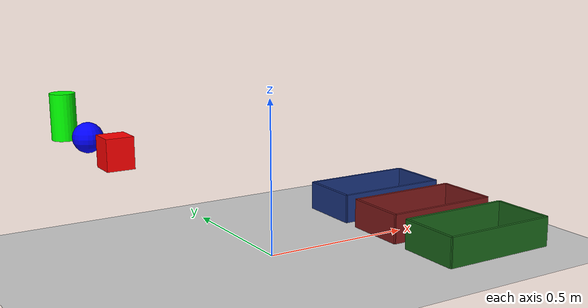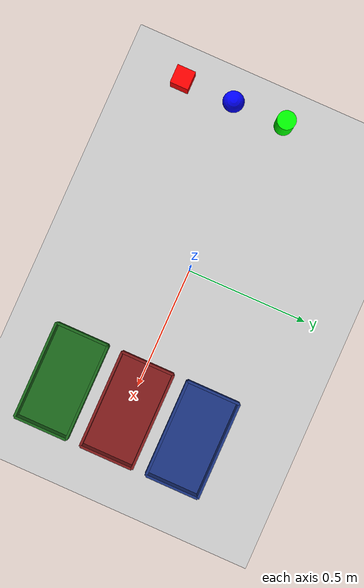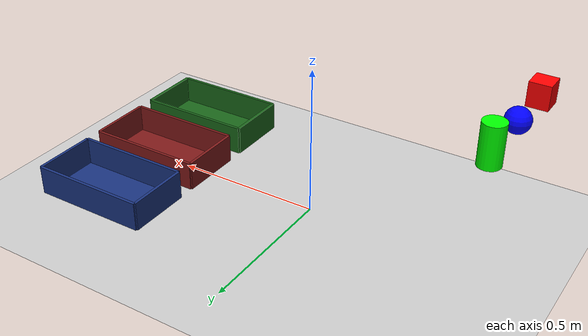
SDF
<?xml version="1.0" ?>
<sdf version="1.6">
  <world name="sorting_workspace">

    <light type="directional" name="sun">
      <cast_shadows>true</cast_shadows>
      <pose>0 0 10 0 0 0</pose>
      <diffuse>0.8 0.8 0.8 1</diffuse>
      <specular>0.2 0.2 0.2 1</specular>
      <attenuation>
        <range>1000</range>
        <constant>0.9</constant>
        <linear>0.01</linear>
        <quadratic>0.001</quadratic>
      </attenuation>
      <direction>-0.5 0.1 -0.9</direction>
    </light>

    <model name="ground_plane">
      <static>true</static>
      <link name="link">
        <collision name="collision">
          <geometry>
            <plane>
              <normal>0 0 1</normal>
              <size>100 100</size>
            </plane>
          </geometry>
        </collision>
        <visual name="visual">
          <geometry>
            <plane>
              <normal>0 0 1</normal>
              <size>100 100</size>
            </plane>
          </geometry>
          <material>
            <ambient>0.8 0.8 0.8 1</ambient>
            <diffuse>0.8 0.8 0.8 1</diffuse>
          </material>
        </visual>
      </link>
    </model>

    <!-- 1. OVERHEAD CAMERA MODEL (CENTERED & RAISED TO VIEW ALL OBJECTS + BINS) -->
    <!-- 1. OVERHEAD CAMERA MODEL (WIDE ANGLE OVERHEAD VIEW) -->
    <model name="overhead_camera">
      <static>true</static>
      <!-- Centered at X=0.0, raised to Z=2.2m -->
      <pose>0.0 0.0 1.3 0 1.5708 0</pose>
      <link name="link">
        <sensor type="rgbd_camera" name="gazebo_camera">
          <always_on>true</always_on>
          <update_rate>30.0</update_rate>
          <topic>camera</topic>
          <camera>
            <horizontal_fov>1.60</horizontal_fov>
            <image>
              <width>640</width>
              <height>480</height>
              <format>R8G8B8</format>
            </image>
            <clip>
              <near>0.1</near>
              <far>10.0</far>
            </clip>
          </camera>
        </sensor>
      </link>
    </model>

    <!-- 2. THREE HOLLOW OPEN-TOP BINS -->
    <!-- GREEN BIN -->
    <model name="bin_green">
      <static>true</static>
      <pose>0.6 -0.28 0 0 0 0</pose>
      <link name="link">
        <visual name="bottom_v"><pose>0 0 0 0 0 0</pose><geometry><box><size>0.4 0.22 0.01</size></box></geometry><material><ambient>0.1 0.4 0.1 1</ambient><diffuse>0.1 0.4 0.1 1</diffuse></material></visual>
        <collision name="bottom_c"><pose>0 0 0 0 0 0</pose><geometry><box><size>0.4 0.22 0.01</size></box></geometry></collision>
        <visual name="front_v"><pose>0.2 0 0.05 0 0 0</pose><geometry><box><size>0.01 0.22 0.1</size></box></geometry><material><ambient>0.1 0.4 0.1 1</ambient><diffuse>0.1 0.4 0.1 1</diffuse></material></visual>
        <collision name="front_c"><pose>0.2 0 0.05 0 0 0</pose><geometry><box><size>0.01 0.22 0.1</size></box></geometry></collision>
        <visual name="back_v"><pose>-0.2 0 0.05 0 0 0</pose><geometry><box><size>0.01 0.22 0.1</size></box></geometry><material><ambient>0.1 0.4 0.1 1</ambient><diffuse>0.1 0.4 0.1 1</diffuse></material></visual>
        <collision name="back_c"><pose>-0.2 0 0.05 0 0 0</pose><geometry><box><size>0.01 0.22 0.1</size></box></geometry></collision>
        <visual name="left_v"><pose>0 0.11 0.05 0 0 0</pose><geometry><box><size>0.4 0.01 0.1</size></box></geometry><material><ambient>0.1 0.4 0.1 1</ambient><diffuse>0.1 0.4 0.1 1</diffuse></material></visual>
        <collision name="left_c"><pose>0 0.11 0.05 0 0 0</pose><geometry><box><size>0.4 0.01 0.1</size></box></geometry></collision>
        <visual name="right_v"><pose>0 -0.11 0.05 0 0 0</pose><geometry><box><size>0.4 0.01 0.1</size></box></geometry><material><ambient>0.1 0.4 0.1 1</ambient><diffuse>0.1 0.4 0.1 1</diffuse></material></visual>
        <collision name="right_c"><pose>0 -0.11 0.05 0 0 0</pose><geometry><box><size>0.4 0.01 0.1</size></box></geometry></collision>
      </link>
    </model>

    <!-- RED BIN -->
    <model name="bin_red">
      <static>true</static>
      <pose>0.6 0.0 0 0 0 0</pose>
      <link name="link">
        <visual name="bottom_v"><pose>0 0 0 0 0 0</pose><geometry><box><size>0.4 0.22 0.01</size></box></geometry><material><ambient>0.5 0.1 0.1 1</ambient><diffuse>0.5 0.1 0.1 1</diffuse></material></visual>
        <collision name="bottom_c"><pose>0 0 0 0 0 0</pose><geometry><box><size>0.4 0.22 0.01</size></box></geometry></collision>
        <visual name="front_v"><pose>0.2 0 0.05 0 0 0</pose><geometry><box><size>0.01 0.22 0.1</size></box></geometry><material><ambient>0.5 0.1 0.1 1</ambient><diffuse>0.5 0.1 0.1 1</diffuse></material></visual>
        <collision name="front_c"><pose>0.2 0 0.05 0 0 0</pose><geometry><box><size>0.01 0.22 0.1</size></box></geometry></collision>
        <visual name="back_v"><pose>-0.2 0 0.05 0 0 0</pose><geometry><box><size>0.01 0.22 0.1</size></box></geometry><material><ambient>0.5 0.1 0.1 1</ambient><diffuse>0.5 0.1 0.1 1</diffuse></material></visual>
        <collision name="back_c"><pose>-0.2 0 0.05 0 0 0</pose><geometry><box><size>0.01 0.22 0.1</size></box></geometry></collision>
        <visual name="left_v"><pose>0 0.11 0.05 0 0 0</pose><geometry><box><size>0.4 0.01 0.1</size></box></geometry><material><ambient>0.5 0.1 0.1 1</ambient><diffuse>0.5 0.1 0.1 1</diffuse></material></visual>
        <collision name="left_c"><pose>0 0.11 0.05 0 0 0</pose><geometry><box><size>0.4 0.01 0.1</size></box></geometry></collision>
        <visual name="right_v"><pose>0 -0.11 0.05 0 0 0</pose><geometry><box><size>0.4 0.01 0.1</size></box></geometry><material><ambient>0.5 0.1 0.1 1</ambient><diffuse>0.5 0.1 0.1 1</diffuse></material></visual>
        <collision name="right_c"><pose>0 -0.11 0.05 0 0 0</pose><geometry><box><size>0.4 0.01 0.1</size></box></geometry></collision>
      </link>
    </model>

    <!-- BLUE BIN -->
    <model name="bin_blue">
      <static>true</static>
      <pose>0.6 0.28 0 0 0 0</pose>
      <link name="link">
        <visual name="bottom_v"><pose>0 0 0 0 0 0</pose><geometry><box><size>0.4 0.22 0.01</size></box></geometry><material><ambient>0.1 0.2 0.5 1</ambient><diffuse>0.1 0.2 0.5 1</diffuse></material></visual>
        <collision name="bottom_c"><pose>0 0 0 0 0 0</pose><geometry><box><size>0.4 0.22 0.01</size></box></geometry></collision>
        <visual name="front_v"><pose>0.2 0 0.05 0 0 0</pose><geometry><box><size>0.01 0.22 0.1</size></box></geometry><material><ambient>0.1 0.2 0.5 1</ambient><diffuse>0.1 0.2 0.5 1</diffuse></material></visual>
        <collision name="front_c"><pose>0.2 0 0.05 0 0 0</pose><geometry><box><size>0.01 0.22 0.1</size></box></geometry></collision>
        <visual name="back_v"><pose>-0.2 0 0.05 0 0 0</pose><geometry><box><size>0.01 0.22 0.1</size></box></geometry><material><ambient>0.1 0.2 0.5 1</ambient><diffuse>0.1 0.2 0.5 1</diffuse></material></visual>
        <collision name="back_c"><pose>-0.2 0 0.05 0 0 0</pose><geometry><box><size>0.01 0.22 0.1</size></box></geometry></collision>
        <visual name="left_v"><pose>0 0.11 0.05 0 0 0</pose><geometry><box><size>0.4 0.01 0.1</size></box></geometry><material><ambient>0.1 0.2 0.5 1</ambient><diffuse>0.1 0.2 0.5 1</diffuse></material></visual>
        <collision name="left_c"><pose>0 0.11 0.05 0 0 0</pose><geometry><box><size>0.4 0.01 0.1</size></box></geometry></collision>
        <visual name="right_v"><pose>0 -0.11 0.05 0 0 0</pose><geometry><box><size>0.4 0.01 0.1</size></box></geometry><material><ambient>0.1 0.2 0.5 1</ambient><diffuse>0.1 0.2 0.5 1</diffuse></material></visual>
        <collision name="right_c"><pose>0 -0.11 0.05 0 0 0</pose><geometry><box><size>0.4 0.01 0.1</size></box></geometry></collision>
      </link>
    </model>

    <!-- 3. PICKABLE OBJECTS ON CONVEYOR -->
    <!-- Red Cube -->
    <model name="red_box">
      <pose>-0.6 -0.3 0.465 0 0 0</pose>
      <link name="link">
        <inertial><mass>0.1</mass><inertia><ixx>0.0001</ixx><ixy>0</ixy><ixz>0</ixz><iyy>0.0001</iyy><iyz>0</iyz><izz>0.0001</izz></inertia></inertial>
        <visual name="v"><geometry><box><size>0.07 0.07 0.08</size></box></geometry><material><ambient>1 0 0 1</ambient></material></visual>
        <collision name="c"><geometry><box><size>0.07 0.07 0.08</size></box></geometry></collision>
      </link>
    </model>

    <!-- Green Cylinder -->
    <model name="green_cylinder">
      <pose>-0.6 0.1 0.49 0 0 0</pose>
      <link name="link">
        <inertial><mass>0.1</mass><inertia><ixx>0.0001</ixx><ixy>0</ixy><ixz>0</ixz><iyy>0.0001</iyy><iyz>0</iyz><izz>0.0001</izz></inertia></inertial>
        <visual name="v"><geometry><cylinder><radius>0.035</radius><length>0.13</length></cylinder></geometry><material><ambient>0 1 0 1</ambient></material></visual>
        <collision name="c"><geometry><cylinder><radius>0.035</radius><length>0.13</length></cylinder></geometry></collision>
      </link>
    </model>

    <!-- Blue Sphere -->
    <model name="blue_sphere">
      <pose>-0.6 -0.1 0.465 0 0 0</pose>
      <link name="link">
        <inertial><mass>0.1</mass><inertia><ixx>0.0001</ixx><ixy>0</ixy><ixz>0</ixz><iyy>0.0001</iyy><iyz>0</iyz><izz>0.0001</izz></inertia></inertial>
        <visual name="v"><geometry><sphere><radius>0.04</radius></sphere></geometry><material><ambient>0 0 1 1</ambient></material></visual>
        <collision name="c"><geometry><sphere><radius>0.04</radius></sphere></geometry></collision>
      </link>
    </model>

  </world>
</sdf>
